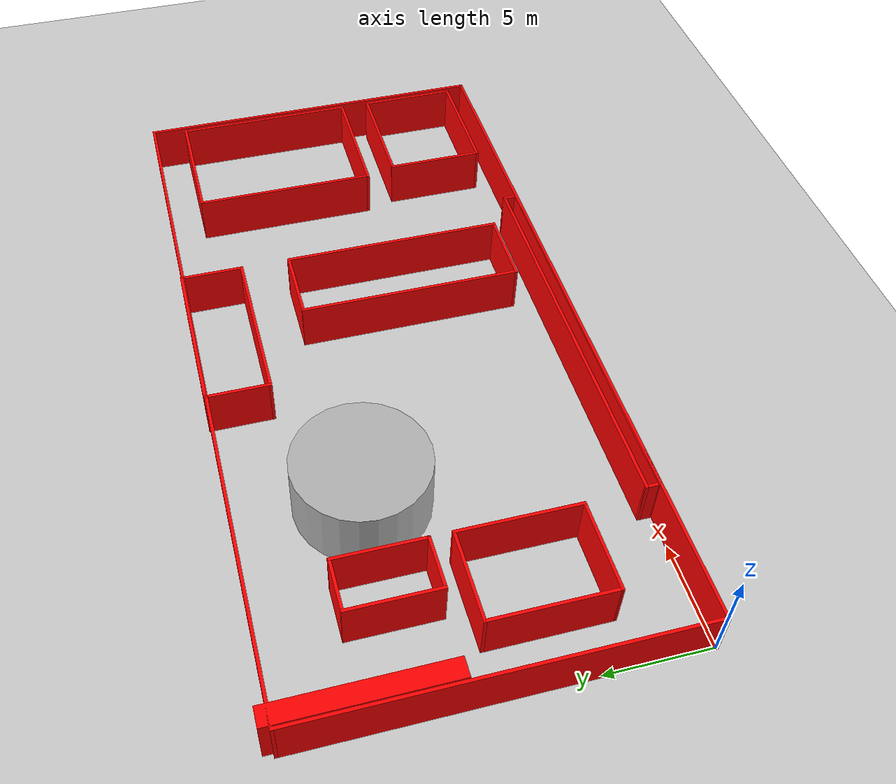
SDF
<sdf version="1.7">
 <world name="default">
  <light name="sun" type="directional">
   <pose>0 0 10 0 -0 0</pose>
   <diffuse>0.8 0.8 0.8 1</diffuse>
   <specular>0.2 0.2 0.2 1</specular>
   <attenuation>
    <range>1000</range>
    <constant>0.9</constant>
    <linear>0.01</linear>
    <quadratic>0.001</quadratic>
   </attenuation>
   <direction>-0.5 0.1 -0.9</direction>
   <spot><inner_angle>0</inner_angle><outer_angle>0</outer_angle><falloff>0</falloff></spot>
  </light>
  <model name="ground_plane">
   <static>1</static>
   <link name="link">
    <collision name="collision">
     <geometry><plane><normal>0 0 1</normal><size>100 100</size></plane></geometry>
     <surface><friction><ode><mu>1.0</mu><mu2>1.0</mu2></ode></friction></surface>
    </collision>
    <visual name="visual">
     <cast_shadows>0</cast_shadows>
     <geometry><plane><normal>0 0 1</normal><size>100 100</size></plane></geometry>
     <material>
      <script><uri>file://media/materials/scripts/gazebo.material</uri><name>Gazebo/Grey</name></script>
     </material>
    </visual>
   </link>
  </model>
  <gravity>0 0 -9.8</gravity>
  <magnetic_field>6e-06 2.3e-05 -4.2e-05</magnetic_field>
  <atmosphere type="adiabatic"/>
  <physics type="ode">
   <max_step_size>0.001</max_step_size>
   <real_time_factor>1</real_time_factor>
   <real_time_update_rate>1000</real_time_update_rate>
  </physics>
  <scene><ambient>0.4 0.4 0.4 1</ambient><background>0.7 0.7 0.7 1</background><shadows>1</shadows></scene>
  <audio><device>default</device></audio>
  <spherical_coordinates>
   <surface_model>EARTH_WGS84</surface_model>
   <latitude_deg>0</latitude_deg>
   <longitude_deg>0</longitude_deg>
   <elevation>0</elevation>
   <heading_deg>0</heading_deg>
  </spherical_coordinates>
  <model name="Untitled">
   <pose>18.29 9.145 0 0 -0 0</pose>
   <link name="Wall_0">
    <collision name="Wall_0_Collision">
     <geometry><box><size>36.73 0.15 2.5</size></box></geometry>
     <pose>0 0 1.25 0 -0 0</pose>
    </collision>
    <visual name="Wall_0_Visual">
     <pose>0 0 1.25 0 -0 0</pose>
     <geometry><box><size>36.73 0.15 2.5</size></box></geometry>
     <material>
      <script><uri>file://media/materials/scripts/gazebo.material</uri><name>Gazebo/Grey</name></script>
      <ambient>1 0 0 0</ambient>
     </material>
     <meta><layer>0</layer></meta>
    </visual>
    <pose>0 -9.145 0 0 -0 0</pose>
   </link>
   <link name="Wall_1">
    <collision name="Wall_1_Collision">
     <geometry><box><size>18.44 0.15 2.5</size></box></geometry>
     <pose>0 0 1.25 0 -0 0</pose>
    </collision>
    <visual name="Wall_1_Visual">
     <pose>0 0 1.25 0 -0 0</pose>
     <geometry><box><size>18.44 0.15 2.5</size></box></geometry>
     <material>
      <script><uri>file://media/materials/scripts/gazebo.material</uri><name>Gazebo/Grey</name></script>
      <ambient>1 0 0 0</ambient>
     </material>
     <meta><layer>0</layer></meta>
    </visual>
    <pose>18.29 0 0 0 -0 1.5708</pose>
   </link>
   <link name="Wall_2">
    <collision name="Wall_2_Collision">
     <geometry><box><size>36.73 0.15 2.5</size></box></geometry>
     <pose>0 0 1.25 0 -0 0</pose>
    </collision>
    <visual name="Wall_2_Visual">
     <pose>0 0 1.25 0 -0 0</pose>
     <geometry><box><size>36.73 0.15 2.5</size></box></geometry>
     <material>
      <script><uri>file://media/materials/scripts/gazebo.material</uri><name>Gazebo/Grey</name></script>
      <ambient>1 0 0 0</ambient>
     </material>
     <meta><layer>0</layer></meta>
    </visual>
    <pose>0 9.145 0 0 -0 3.14159</pose>
   </link>
   <link name="Wall_3">
    <collision name="Wall_3_Collision">
     <geometry><box><size>18.44 0.15 2.5</size></box></geometry>
     <pose>0 0 1.25 0 -0 0</pose>
    </collision>
    <visual name="Wall_3_Visual">
     <pose>0 0 1.25 0 -0 0</pose>
     <geometry><box><size>18.44 0.15 2.5</size></box></geometry>
     <material>
      <script><uri>file://media/materials/scripts/gazebo.material</uri><name>Gazebo/Grey</name></script>
      <ambient>1 0 0 0</ambient>
     </material>
     <meta><layer>0</layer></meta>
    </visual>
    <pose>-18.29 0 0 0 -0 -1.5708</pose>
   </link>
   <static>1</static>
  </model>
  <model name="usda_build_full">
   <link name="Wall_12">
    <pose>-11.6905 -2.945 0 0 -0 1.5708</pose>
    <visual name="Wall_12_Visual">
     <pose>0 0 1.25 0 -0 0</pose>
     <geometry><box><size>5.945 0.15 2.5</size></box></geometry>
     <material>
      <script><uri>file://media/materials/scripts/gazebo.material</uri><name>Gazebo/Grey</name></script>
      <ambient>1 0 0 0</ambient>
      <shader type="pixel"/>
     </material>
     <meta><layer>0</layer></meta>
    </visual>
    <collision name="Wall_12_Collision">
     <pose>0 0 1.25 0 -0 0</pose>
     <geometry><box><size>5.945 0.15 2.5</size></box></geometry>
     <surface>
      <friction>
       <ode><mu>1</mu><mu2>1</mu2><fdir1>0 0 0</fdir1><slip1>0</slip1><slip2>0</slip2></ode>
       <torsional>
        <coefficient>1</coefficient>
        <patch_radius>0</patch_radius>
        <surface_radius>0</surface_radius>
        <use_patch_radius>1</use_patch_radius>
        <ode><slip>0</slip></ode>
       </torsional>
      </friction>
      <bounce><restitution_coefficient>0</restitution_coefficient><threshold>1e+06</threshold></bounce>
      <contact>
       <collide_without_contact>0</collide_without_contact>
       <collide_without_contact_bitmask>1</collide_without_contact_bitmask>
       <collide_bitmask>1</collide_bitmask>
       <ode>
        <soft_cfm>0</soft_cfm>
        <soft_erp>0.2</soft_erp>
        <kp>1e+13</kp>
        <kd>1</kd>
        <max_vel>0.01</max_vel>
        <min_depth>0</min_depth>
       </ode>
       <bullet>
        <split_impulse>1</split_impulse>
        <split_impulse_penetration_threshold>-0.01</split_impulse_penetration_threshold>
        <soft_cfm>0</soft_cfm>
        <soft_erp>0.2</soft_erp>
        <kp>1e+13</kp>
        <kd>1</kd>
       </bullet>
      </contact>
     </surface>
    </collision>
   </link>
   <link name="Wall_13">
    <pose>-13.8255 -0.0475 0 0 -0 3.14159</pose>
    <visual name="Wall_13_Visual">
     <pose>0 0 1.25 0 -0 0</pose>
     <geometry><box><size>4.42 0.15 2.5</size></box></geometry>
     <material>
      <script><uri>file://media/materials/scripts/gazebo.material</uri><name>Gazebo/Grey</name></script>
      <ambient>1 0 0 0</ambient>
      <shader type="pixel"/>
     </material>
     <meta><layer>0</layer></meta>
    </visual>
    <collision name="Wall_13_Collision">
     <pose>0 0 1.25 0 -0 0</pose>
     <geometry><box><size>4.42 0.15 2.5</size></box></geometry>
     <surface>
      <friction>
       <ode><mu>1</mu><mu2>1</mu2><fdir1>0 0 0</fdir1><slip1>0</slip1><slip2>0</slip2></ode>
       <torsional>
        <coefficient>1</coefficient>
        <patch_radius>0</patch_radius>
        <surface_radius>0</surface_radius>
        <use_patch_radius>1</use_patch_radius>
        <ode><slip>0</slip></ode>
       </torsional>
      </friction>
      <bounce><restitution_coefficient>0</restitution_coefficient><threshold>1e+06</threshold></bounce>
      <contact>
       <collide_without_contact>0</collide_without_contact>
       <collide_without_contact_bitmask>1</collide_without_contact_bitmask>
       <collide_bitmask>1</collide_bitmask>
       <ode>
        <soft_cfm>0</soft_cfm>
        <soft_erp>0.2</soft_erp>
        <kp>1e+13</kp>
        <kd>1</kd>
        <max_vel>0.01</max_vel>
        <min_depth>0</min_depth>
       </ode>
       <bullet>
        <split_impulse>1</split_impulse>
        <split_impulse_penetration_threshold>-0.01</split_impulse_penetration_threshold>
        <soft_cfm>0</soft_cfm>
        <soft_erp>0.2</soft_erp>
        <kp>1e+13</kp>
        <kd>1</kd>
       </bullet>
      </contact>
     </surface>
    </collision>
   </link>
   <link name="Wall_14">
    <pose>-15.9605 -2.9475 0 0 0 -1.5708</pose>
    <visual name="Wall_14_Visual">
     <pose>0 0 1.25 0 -0 0</pose>
     <geometry><box><size>5.95 0.15 2.5</size></box></geometry>
     <material>
      <script><uri>file://media/materials/scripts/gazebo.material</uri><name>Gazebo/Grey</name></script>
      <ambient>1 0 0 0</ambient>
      <shader type="pixel"/>
     </material>
     <meta><layer>0</layer></meta>
    </visual>
    <collision name="Wall_14_Collision">
     <pose>0 0 1.25 0 -0 0</pose>
     <geometry><box><size>5.95 0.15 2.5</size></box></geometry>
     <surface>
      <friction>
       <ode><mu>1</mu><mu2>1</mu2><fdir1>0 0 0</fdir1><slip1>0</slip1><slip2>0</slip2></ode>
       <torsional>
        <coefficient>1</coefficient>
        <patch_radius>0</patch_radius>
        <surface_radius>0</surface_radius>
        <use_patch_radius>1</use_patch_radius>
        <ode><slip>0</slip></ode>
       </torsional>
      </friction>
      <bounce><restitution_coefficient>0</restitution_coefficient><threshold>1e+06</threshold></bounce>
      <contact>
       <collide_without_contact>0</collide_without_contact>
       <collide_without_contact_bitmask>1</collide_without_contact_bitmask>
       <collide_bitmask>1</collide_bitmask>
       <ode>
        <soft_cfm>0</soft_cfm>
        <soft_erp>0.2</soft_erp>
        <kp>1e+13</kp>
        <kd>1</kd>
        <max_vel>0.01</max_vel>
        <min_depth>0</min_depth>
       </ode>
       <bullet>
        <split_impulse>1</split_impulse>
        <split_impulse_penetration_threshold>-0.01</split_impulse_penetration_threshold>
        <soft_cfm>0</soft_cfm>
        <soft_erp>0.2</soft_erp>
        <kp>1e+13</kp>
        <kd>1</kd>
       </bullet>
      </contact>
     </surface>
    </collision>
   </link>
   <link name="Wall_15">
    <pose>-13.8255 -5.845 0 0 -0 0.001171</pose>
    <visual name="Wall_15_Visual">
     <pose>0 0 1.25 0 -0 0</pose>
     <geometry><box><size>4.42 0.15 2.5</size></box></geometry>
     <material>
      <script><uri>file://media/materials/scripts/gazebo.material</uri><name>Gazebo/Grey</name></script>
      <ambient>1 0 0 0</ambient>
      <shader type="pixel"/>
     </material>
     <meta><layer>0</layer></meta>
    </visual>
    <collision name="Wall_15_Collision">
     <pose>0 0 1.25 0 -0 0</pose>
     <geometry><box><size>4.42 0.15 2.5</size></box></geometry>
     <surface>
      <friction>
       <ode><mu>1</mu><mu2>1</mu2><fdir1>0 0 0</fdir1><slip1>0</slip1><slip2>0</slip2></ode>
       <torsional>
        <coefficient>1</coefficient>
        <patch_radius>0</patch_radius>
        <surface_radius>0</surface_radius>
        <use_patch_radius>1</use_patch_radius>
        <ode><slip>0</slip></ode>
       </torsional>
      </friction>
      <bounce><restitution_coefficient>0</restitution_coefficient><threshold>1e+06</threshold></bounce>
      <contact>
       <collide_without_contact>0</collide_without_contact>
       <collide_without_contact_bitmask>1</collide_without_contact_bitmask>
       <collide_bitmask>1</collide_bitmask>
       <ode>
        <soft_cfm>0</soft_cfm>
        <soft_erp>0.2</soft_erp>
        <kp>1e+13</kp>
        <kd>1</kd>
        <max_vel>0.01</max_vel>
        <min_depth>0</min_depth>
       </ode>
       <bullet>
        <split_impulse>1</split_impulse>
        <split_impulse_penetration_threshold>-0.01</split_impulse_penetration_threshold>
        <soft_cfm>0</soft_cfm>
        <soft_erp>0.2</soft_erp>
        <kp>1e+13</kp>
        <kd>1</kd>
       </bullet>
      </contact>
     </surface>
    </collision>
   </link>
   <link name="Wall_19">
    <pose>-14.1305 3.1595 0 0 0 -1.5708</pose>
    <visual name="Wall_19_Visual">
     <pose>0 0 1.25 0 -0 0</pose>
     <geometry><box><size>4.42 0.15 2.5</size></box></geometry>
     <material>
      <script><uri>file://media/materials/scripts/gazebo.material</uri><name>Gazebo/Grey</name></script>
      <ambient>1 0 0 0</ambient>
      <shader type="pixel"/>
     </material>
     <meta><layer>0</layer></meta>
    </visual>
    <collision name="Wall_19_Collision">
     <pose>0 0 1.25 0 -0 0</pose>
     <geometry><box><size>4.42 0.15 2.5</size></box></geometry>
     <surface>
      <friction>
       <ode><mu>1</mu><mu2>1</mu2><fdir1>0 0 0</fdir1><slip1>0</slip1><slip2>0</slip2></ode>
       <torsional>
        <coefficient>1</coefficient>
        <patch_radius>0</patch_radius>
        <surface_radius>0</surface_radius>
        <use_patch_radius>1</use_patch_radius>
        <ode><slip>0</slip></ode>
       </torsional>
      </friction>
      <bounce><restitution_coefficient>0</restitution_coefficient><threshold>1e+06</threshold></bounce>
      <contact>
       <collide_without_contact>0</collide_without_contact>
       <collide_without_contact_bitmask>1</collide_without_contact_bitmask>
       <collide_bitmask>1</collide_bitmask>
       <ode>
        <soft_cfm>0</soft_cfm>
        <soft_erp>0.2</soft_erp>
        <kp>1e+13</kp>
        <kd>1</kd>
        <max_vel>0.01</max_vel>
        <min_depth>0</min_depth>
       </ode>
       <bullet>
        <split_impulse>1</split_impulse>
        <split_impulse_penetration_threshold>-0.01</split_impulse_penetration_threshold>
        <soft_cfm>0</soft_cfm>
        <soft_erp>0.2</soft_erp>
        <kp>1e+13</kp>
        <kd>1</kd>
       </bullet>
      </contact>
     </surface>
    </collision>
   </link>
   <link name="Wall_22">
    <pose>-12.9105 1.0245 0 0 -0 3.14159</pose>
    <visual name="Wall_22_Visual">
     <pose>0 0 1.25 0 -0 0</pose>
     <geometry><box><size>2.59 0.15 2.5</size></box></geometry>
     <material>
      <script><uri>file://media/materials/scripts/gazebo.material</uri><name>Gazebo/Grey</name></script>
      <ambient>1 0 0 0</ambient>
      <shader type="pixel"/>
     </material>
     <meta><layer>0</layer></meta>
    </visual>
    <collision name="Wall_22_Collision">
     <pose>0 0 1.25 0 -0 0</pose>
     <geometry><box><size>2.59 0.15 2.5</size></box></geometry>
     <surface>
      <friction>
       <ode><mu>1</mu><mu2>1</mu2><fdir1>0 0 0</fdir1><slip1>0</slip1><slip2>0</slip2></ode>
       <torsional>
        <coefficient>1</coefficient>
        <patch_radius>0</patch_radius>
        <surface_radius>0</surface_radius>
        <use_patch_radius>1</use_patch_radius>
        <ode><slip>0</slip></ode>
       </torsional>
      </friction>
      <bounce><restitution_coefficient>0</restitution_coefficient><threshold>1e+06</threshold></bounce>
      <contact>
       <collide_without_contact>0</collide_without_contact>
       <collide_without_contact_bitmask>1</collide_without_contact_bitmask>
       <collide_bitmask>1</collide_bitmask>
       <ode>
        <soft_cfm>0</soft_cfm>
        <soft_erp>0.2</soft_erp>
        <kp>1e+13</kp>
        <kd>1</kd>
        <max_vel>0.01</max_vel>
        <min_depth>0</min_depth>
       </ode>
       <bullet>
        <split_impulse>1</split_impulse>
        <split_impulse_penetration_threshold>-0.01</split_impulse_penetration_threshold>
        <soft_cfm>0</soft_cfm>
        <soft_erp>0.2</soft_erp>
        <kp>1e+13</kp>
        <kd>1</kd>
       </bullet>
      </contact>
     </surface>
    </collision>
   </link>
   <link name="Wall_24">
    <pose>-11.6905 3.1595 0 0 -0 1.5708</pose>
    <visual name="Wall_24_Visual">
     <pose>0 0 1.25 0 -0 0</pose>
     <geometry><box><size>4.42 0.15 2.5</size></box></geometry>
     <material>
      <script><uri>file://media/materials/scripts/gazebo.material</uri><name>Gazebo/Grey</name></script>
      <ambient>1 0 0 0</ambient>
      <shader type="pixel"/>
     </material>
     <meta><layer>0</layer></meta>
    </visual>
    <collision name="Wall_24_Collision">
     <pose>0 0 1.25 0 -0 0</pose>
     <geometry><box><size>4.42 0.15 2.5</size></box></geometry>
     <surface>
      <friction>
       <ode><mu>1</mu><mu2>1</mu2><fdir1>0 0 0</fdir1><slip1>0</slip1><slip2>0</slip2></ode>
       <torsional>
        <coefficient>1</coefficient>
        <patch_radius>0</patch_radius>
        <surface_radius>0</surface_radius>
        <use_patch_radius>1</use_patch_radius>
        <ode><slip>0</slip></ode>
       </torsional>
      </friction>
      <bounce><restitution_coefficient>0</restitution_coefficient><threshold>1e+06</threshold></bounce>
      <contact>
       <collide_without_contact>0</collide_without_contact>
       <collide_without_contact_bitmask>1</collide_without_contact_bitmask>
       <collide_bitmask>1</collide_bitmask>
       <ode>
        <soft_cfm>0</soft_cfm>
        <soft_erp>0.2</soft_erp>
        <kp>1e+13</kp>
        <kd>1</kd>
        <max_vel>0.01</max_vel>
        <min_depth>0</min_depth>
       </ode>
       <bullet>
        <split_impulse>1</split_impulse>
        <split_impulse_penetration_threshold>-0.01</split_impulse_penetration_threshold>
        <soft_cfm>0</soft_cfm>
        <soft_erp>0.2</soft_erp>
        <kp>1e+13</kp>
        <kd>1</kd>
       </bullet>
      </contact>
     </surface>
    </collision>
   </link>
   <link name="Wall_25">
    <pose>-12.8655 5.2945 0 0 -0 3.14159</pose>
    <visual name="Wall_25_Visual">
     <pose>0 0 1.25 0 -0 0</pose>
     <geometry><box><size>2.5 0.15 2.5</size></box></geometry>
     <material>
      <script><uri>file://media/materials/scripts/gazebo.material</uri><name>Gazebo/Grey</name></script>
      <ambient>1 0 0 0</ambient>
      <shader type="pixel"/>
     </material>
     <meta><layer>0</layer></meta>
    </visual>
    <collision name="Wall_25_Collision">
     <pose>0 0 1.25 0 -0 0</pose>
     <geometry><box><size>2.5 0.15 2.5</size></box></geometry>
     <surface>
      <friction>
       <ode><mu>1</mu><mu2>1</mu2><fdir1>0 0 0</fdir1><slip1>0</slip1><slip2>0</slip2></ode>
       <torsional>
        <coefficient>1</coefficient>
        <patch_radius>0</patch_radius>
        <surface_radius>0</surface_radius>
        <use_patch_radius>1</use_patch_radius>
        <ode><slip>0</slip></ode>
       </torsional>
      </friction>
      <bounce><restitution_coefficient>0</restitution_coefficient><threshold>1e+06</threshold></bounce>
      <contact>
       <collide_without_contact>0</collide_without_contact>
       <collide_without_contact_bitmask>1</collide_without_contact_bitmask>
       <collide_bitmask>1</collide_bitmask>
       <ode>
        <soft_cfm>0</soft_cfm>
        <soft_erp>0.2</soft_erp>
        <kp>1e+13</kp>
        <kd>1</kd>
        <max_vel>0.01</max_vel>
        <min_depth>0</min_depth>
       </ode>
       <bullet>
        <split_impulse>1</split_impulse>
        <split_impulse_penetration_threshold>-0.01</split_impulse_penetration_threshold>
        <soft_cfm>0</soft_cfm>
        <soft_erp>0.2</soft_erp>
        <kp>1e+13</kp>
        <kd>1</kd>
       </bullet>
      </contact>
     </surface>
    </collision>
   </link>
   <link name="Wall_27">
    <pose>-1.86052 7.4275 0 0 -0 1.5708</pose>
    <visual name="Wall_27_Visual">
     <pose>0 0 1.25 0 -0 0</pose>
     <geometry><box><size>3.2 0.15 2.5</size></box></geometry>
     <material>
      <script><uri>file://media/materials/scripts/gazebo.material</uri><name>Gazebo/Grey</name></script>
      <ambient>1 0 0 0</ambient>
      <shader type="pixel"/>
     </material>
     <meta><layer>0</layer></meta>
    </visual>
    <collision name="Wall_27_Collision">
     <pose>0 0 1.25 0 -0 0</pose>
     <geometry><box><size>3.2 0.15 2.5</size></box></geometry>
     <surface>
      <friction>
       <ode><mu>1</mu><mu2>1</mu2><fdir1>0 0 0</fdir1><slip1>0</slip1><slip2>0</slip2></ode>
       <torsional>
        <coefficient>1</coefficient>
        <patch_radius>0</patch_radius>
        <surface_radius>0</surface_radius>
        <use_patch_radius>1</use_patch_radius>
        <ode><slip>0</slip></ode>
       </torsional>
      </friction>
      <bounce><restitution_coefficient>0</restitution_coefficient><threshold>1e+06</threshold></bounce>
      <contact>
       <collide_without_contact>0</collide_without_contact>
       <collide_without_contact_bitmask>1</collide_without_contact_bitmask>
       <collide_bitmask>1</collide_bitmask>
       <ode>
        <soft_cfm>0</soft_cfm>
        <soft_erp>0.2</soft_erp>
        <kp>1e+13</kp>
        <kd>1</kd>
        <max_vel>0.01</max_vel>
        <min_depth>0</min_depth>
       </ode>
       <bullet>
        <split_impulse>1</split_impulse>
        <split_impulse_penetration_threshold>-0.01</split_impulse_penetration_threshold>
        <soft_cfm>0</soft_cfm>
        <soft_erp>0.2</soft_erp>
        <kp>1e+13</kp>
        <kd>1</kd>
       </bullet>
      </contact>
     </surface>
    </collision>
   </link>
   <link name="Wall_29">
    <pose>2.13948 5.9025 0 0 -0 0</pose>
    <visual name="Wall_29_Visual">
     <pose>0 0 1.25 0 -0 0</pose>
     <geometry><box><size>8.15 0.15 2.5</size></box></geometry>
     <material>
      <script><uri>file://media/materials/scripts/gazebo.material</uri><name>Gazebo/Grey</name></script>
      <ambient>1 0 0 0</ambient>
      <shader type="pixel"/>
     </material>
     <meta><layer>0</layer></meta>
    </visual>
    <collision name="Wall_29_Collision">
     <pose>0 0 1.25 0 -0 0</pose>
     <geometry><box><size>8.15 0.15 2.5</size></box></geometry>
     <surface>
      <friction>
       <ode><mu>1</mu><mu2>1</mu2><fdir1>0 0 0</fdir1><slip1>0</slip1><slip2>0</slip2></ode>
       <torsional>
        <coefficient>1</coefficient>
        <patch_radius>0</patch_radius>
        <surface_radius>0</surface_radius>
        <use_patch_radius>1</use_patch_radius>
        <ode><slip>0</slip></ode>
       </torsional>
      </friction>
      <bounce><restitution_coefficient>0</restitution_coefficient><threshold>1e+06</threshold></bounce>
      <contact>
       <collide_without_contact>0</collide_without_contact>
       <collide_without_contact_bitmask>1</collide_without_contact_bitmask>
       <collide_bitmask>1</collide_bitmask>
       <ode>
        <soft_cfm>0</soft_cfm>
        <soft_erp>0.2</soft_erp>
        <kp>1e+13</kp>
        <kd>1</kd>
        <max_vel>0.01</max_vel>
        <min_depth>0</min_depth>
       </ode>
       <bullet>
        <split_impulse>1</split_impulse>
        <split_impulse_penetration_threshold>-0.01</split_impulse_penetration_threshold>
        <soft_cfm>0</soft_cfm>
        <soft_erp>0.2</soft_erp>
        <kp>1e+13</kp>
        <kd>1</kd>
       </bullet>
      </contact>
     </surface>
    </collision>
   </link>
   <link name="Wall_30">
    <pose>6.13948 7.4275 0 0 -0 1.5708</pose>
    <visual name="Wall_30_Visual">
     <pose>0 0 1.25 0 -0 0</pose>
     <geometry><box><size>3.2 0.15 2.5</size></box></geometry>
     <material>
      <script><uri>file://media/materials/scripts/gazebo.material</uri><name>Gazebo/Grey</name></script>
      <ambient>1 0 0 0</ambient>
      <shader type="pixel"/>
     </material>
     <meta><layer>0</layer></meta>
    </visual>
    <collision name="Wall_30_Collision">
     <pose>0 0 1.25 0 -0 0</pose>
     <geometry><box><size>3.2 0.15 2.5</size></box></geometry>
     <surface>
      <friction>
       <ode><mu>1</mu><mu2>1</mu2><fdir1>0 0 0</fdir1><slip1>0</slip1><slip2>0</slip2></ode>
       <torsional>
        <coefficient>1</coefficient>
        <patch_radius>0</patch_radius>
        <surface_radius>0</surface_radius>
        <use_patch_radius>1</use_patch_radius>
        <ode><slip>0</slip></ode>
       </torsional>
      </friction>
      <bounce><restitution_coefficient>0</restitution_coefficient><threshold>1e+06</threshold></bounce>
      <contact>
       <collide_without_contact>0</collide_without_contact>
       <collide_without_contact_bitmask>1</collide_without_contact_bitmask>
       <collide_bitmask>1</collide_bitmask>
       <ode>
        <soft_cfm>0</soft_cfm>
        <soft_erp>0.2</soft_erp>
        <kp>1e+13</kp>
        <kd>1</kd>
        <max_vel>0.01</max_vel>
        <min_depth>0</min_depth>
       </ode>
       <bullet>
        <split_impulse>1</split_impulse>
        <split_impulse_penetration_threshold>-0.01</split_impulse_penetration_threshold>
        <soft_cfm>0</soft_cfm>
        <soft_erp>0.2</soft_erp>
        <kp>1e+13</kp>
        <kd>1</kd>
       </bullet>
      </contact>
     </surface>
    </collision>
   </link>
   <link name="Wall_31">
    <pose>2.13948 8.9525 0 0 -0 3.14159</pose>
    <visual name="Wall_31_Visual">
     <pose>0 0 1.25 0 -0 0</pose>
     <geometry><box><size>8.15 0.15 2.5</size></box></geometry>
     <material>
      <script><uri>file://media/materials/scripts/gazebo.material</uri><name>Gazebo/Grey</name></script>
      <ambient>1 0 0 0</ambient>
      <shader type="pixel"/>
     </material>
     <meta><layer>0</layer></meta>
    </visual>
    <collision name="Wall_31_Collision">
     <pose>0 0 1.25 0 -0 0</pose>
     <geometry><box><size>8.15 0.15 2.5</size></box></geometry>
     <surface>
      <friction>
       <ode><mu>1</mu><mu2>1</mu2><fdir1>0 0 0</fdir1><slip1>0</slip1><slip2>0</slip2></ode>
       <torsional>
        <coefficient>1</coefficient>
        <patch_radius>0</patch_radius>
        <surface_radius>0</surface_radius>
        <use_patch_radius>1</use_patch_radius>
        <ode><slip>0</slip></ode>
       </torsional>
      </friction>
      <bounce><restitution_coefficient>0</restitution_coefficient><threshold>1e+06</threshold></bounce>
      <contact>
       <collide_without_contact>0</collide_without_contact>
       <collide_without_contact_bitmask>1</collide_without_contact_bitmask>
       <collide_bitmask>1</collide_bitmask>
       <ode>
        <soft_cfm>0</soft_cfm>
        <soft_erp>0.2</soft_erp>
        <kp>1e+13</kp>
        <kd>1</kd>
        <max_vel>0.01</max_vel>
        <min_depth>0</min_depth>
       </ode>
       <bullet>
        <split_impulse>1</split_impulse>
        <split_impulse_penetration_threshold>-0.01</split_impulse_penetration_threshold>
        <soft_cfm>0</soft_cfm>
        <soft_erp>0.2</soft_erp>
        <kp>1e+13</kp>
        <kd>1</kd>
       </bullet>
      </contact>
     </surface>
    </collision>
   </link>
   <link name="Wall_33">
    <pose>6.13948 -2.0235 0 0 0 -1.5708</pose>
    <visual name="Wall_33_Visual">
     <pose>0 0 1.25 0 -0 0</pose>
     <geometry><box><size>11.13 0.15 2.5</size></box></geometry>
     <material>
      <script><uri>file://media/materials/scripts/gazebo.material</uri><name>Gazebo/Grey</name></script>
      <ambient>1 0 0 0</ambient>
      <shader type="pixel"/>
     </material>
     <meta><layer>0</layer></meta>
    </visual>
    <collision name="Wall_33_Collision">
     <pose>0 0 1.25 0 -0 0</pose>
     <geometry><box><size>11.13 0.15 2.5</size></box></geometry>
     <surface>
      <friction>
       <ode><mu>1</mu><mu2>1</mu2><fdir1>0 0 0</fdir1><slip1>0</slip1><slip2>0</slip2></ode>
       <torsional>
        <coefficient>1</coefficient>
        <patch_radius>0</patch_radius>
        <surface_radius>0</surface_radius>
        <use_patch_radius>1</use_patch_radius>
        <ode><slip>0</slip></ode>
       </torsional>
      </friction>
      <bounce><restitution_coefficient>0</restitution_coefficient><threshold>1e+06</threshold></bounce>
      <contact>
       <collide_without_contact>0</collide_without_contact>
       <collide_without_contact_bitmask>1</collide_without_contact_bitmask>
       <collide_bitmask>1</collide_bitmask>
       <ode>
        <soft_cfm>0</soft_cfm>
        <soft_erp>0.2</soft_erp>
        <kp>1e+13</kp>
        <kd>1</kd>
        <max_vel>0.01</max_vel>
        <min_depth>0</min_depth>
       </ode>
       <bullet>
        <split_impulse>1</split_impulse>
        <split_impulse_penetration_threshold>-0.01</split_impulse_penetration_threshold>
        <soft_cfm>0</soft_cfm>
        <soft_erp>0.2</soft_erp>
        <kp>1e+13</kp>
        <kd>1</kd>
       </bullet>
      </contact>
     </surface>
    </collision>
   </link>
   <link name="Wall_34">
    <pose>4.29698 -7.5135 0 0 -0 3.14159</pose>
    <visual name="Wall_34_Visual">
     <pose>0 0 1.25 0 -0 0</pose>
     <geometry><box><size>3.835 0.15 2.5</size></box></geometry>
     <material>
      <script><uri>file://media/materials/scripts/gazebo.material</uri><name>Gazebo/Grey</name></script>
      <ambient>1 0 0 0</ambient>
      <shader type="pixel"/>
     </material>
     <meta><layer>0</layer></meta>
    </visual>
    <collision name="Wall_34_Collision">
     <pose>0 0 1.25 0 -0 0</pose>
     <geometry><box><size>3.835 0.15 2.5</size></box></geometry>
     <surface>
      <friction>
       <ode><mu>1</mu><mu2>1</mu2><fdir1>0 0 0</fdir1><slip1>0</slip1><slip2>0</slip2></ode>
       <torsional>
        <coefficient>1</coefficient>
        <patch_radius>0</patch_radius>
        <surface_radius>0</surface_radius>
        <use_patch_radius>1</use_patch_radius>
        <ode><slip>0</slip></ode>
       </torsional>
      </friction>
      <bounce><restitution_coefficient>0</restitution_coefficient><threshold>1e+06</threshold></bounce>
      <contact>
       <collide_without_contact>0</collide_without_contact>
       <collide_without_contact_bitmask>1</collide_without_contact_bitmask>
       <collide_bitmask>1</collide_bitmask>
       <ode>
        <soft_cfm>0</soft_cfm>
        <soft_erp>0.2</soft_erp>
        <kp>1e+13</kp>
        <kd>1</kd>
        <max_vel>0.01</max_vel>
        <min_depth>0</min_depth>
       </ode>
       <bullet>
        <split_impulse>1</split_impulse>
        <split_impulse_penetration_threshold>-0.01</split_impulse_penetration_threshold>
        <soft_cfm>0</soft_cfm>
        <soft_erp>0.2</soft_erp>
        <kp>1e+13</kp>
        <kd>1</kd>
       </bullet>
      </contact>
     </surface>
    </collision>
   </link>
   <link name="Wall_35">
    <pose>2.45448 -2.0235 0 0 -0 1.5708</pose>
    <visual name="Wall_35_Visual">
     <pose>0 0 1.25 0 -0 0</pose>
     <geometry><box><size>11.13 0.15 2.5</size></box></geometry>
     <material>
      <script><uri>file://media/materials/scripts/gazebo.material</uri><name>Gazebo/Grey</name></script>
      <ambient>1 0 0 0</ambient>
      <shader type="pixel"/>
     </material>
     <meta><layer>0</layer></meta>
    </visual>
    <collision name="Wall_35_Collision">
     <pose>0 0 1.25 0 -0 0</pose>
     <geometry><box><size>11.13 0.15 2.5</size></box></geometry>
     <surface>
      <friction>
       <ode><mu>1</mu><mu2>1</mu2><fdir1>0 0 0</fdir1><slip1>0</slip1><slip2>0</slip2></ode>
       <torsional>
        <coefficient>1</coefficient>
        <patch_radius>0</patch_radius>
        <surface_radius>0</surface_radius>
        <use_patch_radius>1</use_patch_radius>
        <ode><slip>0</slip></ode>
       </torsional>
      </friction>
      <bounce><restitution_coefficient>0</restitution_coefficient><threshold>1e+06</threshold></bounce>
      <contact>
       <collide_without_contact>0</collide_without_contact>
       <collide_without_contact_bitmask>1</collide_without_contact_bitmask>
       <collide_bitmask>1</collide_bitmask>
       <ode>
        <soft_cfm>0</soft_cfm>
        <soft_erp>0.2</soft_erp>
        <kp>1e+13</kp>
        <kd>1</kd>
        <max_vel>0.01</max_vel>
        <min_depth>0</min_depth>
       </ode>
       <bullet>
        <split_impulse>1</split_impulse>
        <split_impulse_penetration_threshold>-0.01</split_impulse_penetration_threshold>
        <soft_cfm>0</soft_cfm>
        <soft_erp>0.2</soft_erp>
        <kp>1e+13</kp>
        <kd>1</kd>
       </bullet>
      </contact>
     </surface>
    </collision>
   </link>
   <link name="Wall_36">
    <pose>4.29698 3.4665 0 0 -0 0</pose>
    <visual name="Wall_36_Visual">
     <pose>0 0 1.25 0 -0 0</pose>
     <geometry><box><size>3.835 0.15 2.5</size></box></geometry>
     <material>
      <script><uri>file://media/materials/scripts/gazebo.material</uri><name>Gazebo/Grey</name></script>
      <ambient>1 0 0 0</ambient>
      <shader type="pixel"/>
     </material>
     <meta><layer>0</layer></meta>
    </visual>
    <collision name="Wall_36_Collision">
     <pose>0 0 1.25 0 -0 0</pose>
     <geometry><box><size>3.835 0.15 2.5</size></box></geometry>
     <surface>
      <friction>
       <ode><mu>1</mu><mu2>1</mu2><fdir1>0 0 0</fdir1><slip1>0</slip1><slip2>0</slip2></ode>
       <torsional>
        <coefficient>1</coefficient>
        <patch_radius>0</patch_radius>
        <surface_radius>0</surface_radius>
        <use_patch_radius>1</use_patch_radius>
        <ode><slip>0</slip></ode>
       </torsional>
      </friction>
      <bounce><restitution_coefficient>0</restitution_coefficient><threshold>1e+06</threshold></bounce>
      <contact>
       <collide_without_contact>0</collide_without_contact>
       <collide_without_contact_bitmask>1</collide_without_contact_bitmask>
       <collide_bitmask>1</collide_bitmask>
       <ode>
        <soft_cfm>0</soft_cfm>
        <soft_erp>0.2</soft_erp>
        <kp>1e+13</kp>
        <kd>1</kd>
        <max_vel>0.01</max_vel>
        <min_depth>0</min_depth>
       </ode>
       <bullet>
        <split_impulse>1</split_impulse>
        <split_impulse_penetration_threshold>-0.01</split_impulse_penetration_threshold>
        <soft_cfm>0</soft_cfm>
        <soft_erp>0.2</soft_erp>
        <kp>1e+13</kp>
        <kd>1</kd>
       </bullet>
      </contact>
     </surface>
    </collision>
   </link>
   <link name="Wall_38">
    <pose>14.82 7.1235 0 0 -0 0</pose>
    <visual name="Wall_38_Visual">
     <pose>0 0 1.25 0 -0 0</pose>
     <geometry><box><size>6.549 0.15 2.5</size></box></geometry>
     <material>
      <script><uri>file://media/materials/scripts/gazebo.material</uri><name>Gazebo/Grey</name></script>
      <ambient>1 0 0 0</ambient>
      <shader type="pixel"/>
     </material>
     <meta><layer>0</layer></meta>
    </visual>
    <collision name="Wall_38_Collision">
     <pose>0 0 1.25 0 -0 0</pose>
     <geometry><box><size>6.549 0.15 2.5</size></box></geometry>
     <surface>
      <friction>
       <ode><mu>1</mu><mu2>1</mu2><fdir1>0 0 0</fdir1><slip1>0</slip1><slip2>0</slip2></ode>
       <torsional>
        <coefficient>1</coefficient>
        <patch_radius>0</patch_radius>
        <surface_radius>0</surface_radius>
        <use_patch_radius>1</use_patch_radius>
        <ode><slip>0</slip></ode>
       </torsional>
      </friction>
      <bounce><restitution_coefficient>0</restitution_coefficient><threshold>1e+06</threshold></bounce>
      <contact>
       <collide_without_contact>0</collide_without_contact>
       <collide_without_contact_bitmask>1</collide_without_contact_bitmask>
       <collide_bitmask>1</collide_bitmask>
       <ode>
        <soft_cfm>0</soft_cfm>
        <soft_erp>0.2</soft_erp>
        <kp>1e+13</kp>
        <kd>1</kd>
        <max_vel>0.01</max_vel>
        <min_depth>0</min_depth>
       </ode>
       <bullet>
        <split_impulse>1</split_impulse>
        <split_impulse_penetration_threshold>-0.01</split_impulse_penetration_threshold>
        <soft_cfm>0</soft_cfm>
        <soft_erp>0.2</soft_erp>
        <kp>1e+13</kp>
        <kd>1</kd>
       </bullet>
      </contact>
     </surface>
    </collision>
   </link>
   <link name="Wall_39">
    <pose>18.0225 2.5485 0 0 0 -1.57014</pose>
    <visual name="Wall_39_Visual">
     <pose>0 0 1.25 0 -0 0</pose>
     <geometry><box><size>9.3 0.15 2.5</size></box></geometry>
     <material>
      <script><uri>file://media/materials/scripts/gazebo.material</uri><name>Gazebo/Grey</name></script>
      <ambient>1 0 0 0</ambient>
      <shader type="pixel"/>
     </material>
     <meta><layer>0</layer></meta>
    </visual>
    <collision name="Wall_39_Collision">
     <pose>0 0 1.25 0 -0 0</pose>
     <geometry><box><size>9.3 0.15 2.5</size></box></geometry>
     <surface>
      <friction>
       <ode><mu>1</mu><mu2>1</mu2><fdir1>0 0 0</fdir1><slip1>0</slip1><slip2>0</slip2></ode>
       <torsional>
        <coefficient>1</coefficient>
        <patch_radius>0</patch_radius>
        <surface_radius>0</surface_radius>
        <use_patch_radius>1</use_patch_radius>
        <ode><slip>0</slip></ode>
       </torsional>
      </friction>
      <bounce><restitution_coefficient>0</restitution_coefficient><threshold>1e+06</threshold></bounce>
      <contact>
       <collide_without_contact>0</collide_without_contact>
       <collide_without_contact_bitmask>1</collide_without_contact_bitmask>
       <collide_bitmask>1</collide_bitmask>
       <ode>
        <soft_cfm>0</soft_cfm>
        <soft_erp>0.2</soft_erp>
        <kp>1e+13</kp>
        <kd>1</kd>
        <max_vel>0.01</max_vel>
        <min_depth>0</min_depth>
       </ode>
       <bullet>
        <split_impulse>1</split_impulse>
        <split_impulse_penetration_threshold>-0.01</split_impulse_penetration_threshold>
        <soft_cfm>0</soft_cfm>
        <soft_erp>0.2</soft_erp>
        <kp>1e+13</kp>
        <kd>1</kd>
       </bullet>
      </contact>
     </surface>
    </collision>
   </link>
   <link name="Wall_40">
    <pose>14.823 -2.0265 0 0 -0 3.14159</pose>
    <visual name="Wall_40_Visual">
     <pose>0 0 1.25 0 -0 0</pose>
     <geometry><box><size>6.555 0.15 2.5</size></box></geometry>
     <material>
      <script><uri>file://media/materials/scripts/gazebo.material</uri><name>Gazebo/Grey</name></script>
      <ambient>1 0 0 0</ambient>
      <shader type="pixel"/>
     </material>
     <meta><layer>0</layer></meta>
    </visual>
    <collision name="Wall_40_Collision">
     <pose>0 0 1.25 0 -0 0</pose>
     <geometry><box><size>6.555 0.15 2.5</size></box></geometry>
     <surface>
      <friction>
       <ode><mu>1</mu><mu2>1</mu2><fdir1>0 0 0</fdir1><slip1>0</slip1><slip2>0</slip2></ode>
       <torsional>
        <coefficient>1</coefficient>
        <patch_radius>0</patch_radius>
        <surface_radius>0</surface_radius>
        <use_patch_radius>1</use_patch_radius>
        <ode><slip>0</slip></ode>
       </torsional>
      </friction>
      <bounce><restitution_coefficient>0</restitution_coefficient><threshold>1e+06</threshold></bounce>
      <contact>
       <collide_without_contact>0</collide_without_contact>
       <collide_without_contact_bitmask>1</collide_without_contact_bitmask>
       <collide_bitmask>1</collide_bitmask>
       <ode>
        <soft_cfm>0</soft_cfm>
        <soft_erp>0.2</soft_erp>
        <kp>1e+13</kp>
        <kd>1</kd>
        <max_vel>0.01</max_vel>
        <min_depth>0</min_depth>
       </ode>
       <bullet>
        <split_impulse>1</split_impulse>
        <split_impulse_penetration_threshold>-0.01</split_impulse_penetration_threshold>
        <soft_cfm>0</soft_cfm>
        <soft_erp>0.2</soft_erp>
        <kp>1e+13</kp>
        <kd>1</kd>
       </bullet>
      </contact>
     </surface>
    </collision>
   </link>
   <link name="Wall_41">
    <pose>11.6205 2.5485 0 0 -0 1.5708</pose>
    <visual name="Wall_41_Visual">
     <pose>0 0 1.25 0 -0 0</pose>
     <geometry><box><size>9.3 0.15 2.5</size></box></geometry>
     <material>
      <script><uri>file://media/materials/scripts/gazebo.material</uri><name>Gazebo/Grey</name></script>
      <ambient>1 0 0 0</ambient>
      <shader type="pixel"/>
     </material>
     <meta><layer>0</layer></meta>
    </visual>
    <collision name="Wall_41_Collision">
     <pose>0 0 1.25 0 -0 0</pose>
     <geometry><box><size>9.3 0.15 2.5</size></box></geometry>
     <surface>
      <friction>
       <ode><mu>1</mu><mu2>1</mu2><fdir1>0 0 0</fdir1><slip1>0</slip1><slip2>0</slip2></ode>
       <torsional>
        <coefficient>1</coefficient>
        <patch_radius>0</patch_radius>
        <surface_radius>0</surface_radius>
        <use_patch_radius>1</use_patch_radius>
        <ode><slip>0</slip></ode>
       </torsional>
      </friction>
      <bounce><restitution_coefficient>0</restitution_coefficient><threshold>1e+06</threshold></bounce>
      <contact>
       <collide_without_contact>0</collide_without_contact>
       <collide_without_contact_bitmask>1</collide_without_contact_bitmask>
       <collide_bitmask>1</collide_bitmask>
       <ode>
        <soft_cfm>0</soft_cfm>
        <soft_erp>0.2</soft_erp>
        <kp>1e+13</kp>
        <kd>1</kd>
        <max_vel>0.01</max_vel>
        <min_depth>0</min_depth>
       </ode>
       <bullet>
        <split_impulse>1</split_impulse>
        <split_impulse_penetration_threshold>-0.01</split_impulse_penetration_threshold>
        <soft_cfm>0</soft_cfm>
        <soft_erp>0.2</soft_erp>
        <kp>1e+13</kp>
        <kd>1</kd>
       </bullet>
      </contact>
     </surface>
    </collision>
   </link>
   <link name="Wall_43">
    <pose>15.0305 -3.5375 0 0 -0 0</pose>
    <visual name="Wall_43_Visual">
     <pose>0 0 1.25 0 -0 0</pose>
     <geometry><box><size>6.14 0.15 2.5</size></box></geometry>
     <material>
      <script><uri>file://media/materials/scripts/gazebo.material</uri><name>Gazebo/Grey</name></script>
      <ambient>1 0 0 0</ambient>
      <shader type="pixel"/>
     </material>
     <meta><layer>0</layer></meta>
    </visual>
    <collision name="Wall_43_Collision">
     <pose>0 0 1.25 0 -0 0</pose>
     <geometry><box><size>6.14 0.15 2.5</size></box></geometry>
     <surface>
      <friction>
       <ode><mu>1</mu><mu2>1</mu2><fdir1>0 0 0</fdir1><slip1>0</slip1><slip2>0</slip2></ode>
       <torsional>
        <coefficient>1</coefficient>
        <patch_radius>0</patch_radius>
        <surface_radius>0</surface_radius>
        <use_patch_radius>1</use_patch_radius>
        <ode><slip>0</slip></ode>
       </torsional>
      </friction>
      <bounce><restitution_coefficient>0</restitution_coefficient><threshold>1e+06</threshold></bounce>
      <contact>
       <collide_without_contact>0</collide_without_contact>
       <collide_without_contact_bitmask>1</collide_without_contact_bitmask>
       <collide_bitmask>1</collide_bitmask>
       <ode>
        <soft_cfm>0</soft_cfm>
        <soft_erp>0.2</soft_erp>
        <kp>1e+13</kp>
        <kd>1</kd>
        <max_vel>0.01</max_vel>
        <min_depth>0</min_depth>
       </ode>
       <bullet>
        <split_impulse>1</split_impulse>
        <split_impulse_penetration_threshold>-0.01</split_impulse_penetration_threshold>
        <soft_cfm>0</soft_cfm>
        <soft_erp>0.2</soft_erp>
        <kp>1e+13</kp>
        <kd>1</kd>
       </bullet>
      </contact>
     </surface>
    </collision>
   </link>
   <link name="Wall_44">
    <pose>18.0255 -5.9775 0 0 0 -1.5708</pose>
    <visual name="Wall_44_Visual">
     <pose>0 0 1.25 0 -0 0</pose>
     <geometry><box><size>5.03 0.15 2.5</size></box></geometry>
     <material>
      <script><uri>file://media/materials/scripts/gazebo.material</uri><name>Gazebo/Grey</name></script>
      <ambient>1 0 0 0</ambient>
      <shader type="pixel"/>
     </material>
     <meta><layer>0</layer></meta>
    </visual>
    <collision name="Wall_44_Collision">
     <pose>0 0 1.25 0 -0 0</pose>
     <geometry><box><size>5.03 0.15 2.5</size></box></geometry>
     <surface>
      <friction>
       <ode><mu>1</mu><mu2>1</mu2><fdir1>0 0 0</fdir1><slip1>0</slip1><slip2>0</slip2></ode>
       <torsional>
        <coefficient>1</coefficient>
        <patch_radius>0</patch_radius>
        <surface_radius>0</surface_radius>
        <use_patch_radius>1</use_patch_radius>
        <ode><slip>0</slip></ode>
       </torsional>
      </friction>
      <bounce><restitution_coefficient>0</restitution_coefficient><threshold>1e+06</threshold></bounce>
      <contact>
       <collide_without_contact>0</collide_without_contact>
       <collide_without_contact_bitmask>1</collide_without_contact_bitmask>
       <collide_bitmask>1</collide_bitmask>
       <ode>
        <soft_cfm>0</soft_cfm>
        <soft_erp>0.2</soft_erp>
        <kp>1e+13</kp>
        <kd>1</kd>
        <max_vel>0.01</max_vel>
        <min_depth>0</min_depth>
       </ode>
       <bullet>
        <split_impulse>1</split_impulse>
        <split_impulse_penetration_threshold>-0.01</split_impulse_penetration_threshold>
        <soft_cfm>0</soft_cfm>
        <soft_erp>0.2</soft_erp>
        <kp>1e+13</kp>
        <kd>1</kd>
       </bullet>
      </contact>
     </surface>
    </collision>
   </link>
   <link name="Wall_45">
    <pose>15.0305 -8.4175 0 0 -0 3.14159</pose>
    <visual name="Wall_45_Visual">
     <pose>0 0 1.25 0 -0 0</pose>
     <geometry><box><size>6.14 0.15 2.5</size></box></geometry>
     <material>
      <script><uri>file://media/materials/scripts/gazebo.material</uri><name>Gazebo/Grey</name></script>
      <ambient>1 0 0 0</ambient>
      <shader type="pixel"/>
     </material>
     <meta><layer>0</layer></meta>
    </visual>
    <collision name="Wall_45_Collision">
     <pose>0 0 1.25 0 -0 0</pose>
     <geometry><box><size>6.14 0.15 2.5</size></box></geometry>
     <surface>
      <friction>
       <ode><mu>1</mu><mu2>1</mu2><fdir1>0 0 0</fdir1><slip1>0</slip1><slip2>0</slip2></ode>
       <torsional>
        <coefficient>1</coefficient>
        <patch_radius>0</patch_radius>
        <surface_radius>0</surface_radius>
        <use_patch_radius>1</use_patch_radius>
        <ode><slip>0</slip></ode>
       </torsional>
      </friction>
      <bounce><restitution_coefficient>0</restitution_coefficient><threshold>1e+06</threshold></bounce>
      <contact>
       <collide_without_contact>0</collide_without_contact>
       <collide_without_contact_bitmask>1</collide_without_contact_bitmask>
       <collide_bitmask>1</collide_bitmask>
       <ode>
        <soft_cfm>0</soft_cfm>
        <soft_erp>0.2</soft_erp>
        <kp>1e+13</kp>
        <kd>1</kd>
        <max_vel>0.01</max_vel>
        <min_depth>0</min_depth>
       </ode>
       <bullet>
        <split_impulse>1</split_impulse>
        <split_impulse_penetration_threshold>-0.01</split_impulse_penetration_threshold>
        <soft_cfm>0</soft_cfm>
        <soft_erp>0.2</soft_erp>
        <kp>1e+13</kp>
        <kd>1</kd>
       </bullet>
      </contact>
     </surface>
    </collision>
   </link>
   <link name="Wall_46">
    <pose>12.0355 -5.9775 0 0 -0 1.5708</pose>
    <visual name="Wall_46_Visual">
     <pose>0 0 1.25 0 -0 0</pose>
     <geometry><box><size>5.03 0.15 2.5</size></box></geometry>
     <material>
      <script><uri>file://media/materials/scripts/gazebo.material</uri><name>Gazebo/Grey</name></script>
      <ambient>1 0 0 0</ambient>
      <shader type="pixel"/>
     </material>
     <meta><layer>0</layer></meta>
    </visual>
    <collision name="Wall_46_Collision">
     <pose>0 0 1.25 0 -0 0</pose>
     <geometry><box><size>5.03 0.15 2.5</size></box></geometry>
     <surface>
      <friction>
       <ode><mu>1</mu><mu2>1</mu2><fdir1>0 0 0</fdir1><slip1>0</slip1><slip2>0</slip2></ode>
       <torsional>
        <coefficient>1</coefficient>
        <patch_radius>0</patch_radius>
        <surface_radius>0</surface_radius>
        <use_patch_radius>1</use_patch_radius>
        <ode><slip>0</slip></ode>
       </torsional>
      </friction>
      <bounce><restitution_coefficient>0</restitution_coefficient><threshold>1e+06</threshold></bounce>
      <contact>
       <collide_without_contact>0</collide_without_contact>
       <collide_without_contact_bitmask>1</collide_without_contact_bitmask>
       <collide_bitmask>1</collide_bitmask>
       <ode>
        <soft_cfm>0</soft_cfm>
        <soft_erp>0.2</soft_erp>
        <kp>1e+13</kp>
        <kd>1</kd>
        <max_vel>0.01</max_vel>
        <min_depth>0</min_depth>
       </ode>
       <bullet>
        <split_impulse>1</split_impulse>
        <split_impulse_penetration_threshold>-0.01</split_impulse_penetration_threshold>
        <soft_cfm>0</soft_cfm>
        <soft_erp>0.2</soft_erp>
        <kp>1e+13</kp>
        <kd>1</kd>
       </bullet>
      </contact>
     </surface>
    </collision>
   </link>
   <link name="Wall_48">
    <pose>-11.5505 -9.0325 0 0 -0 1.5708</pose>
    <visual name="Wall_48_Visual">
     <pose>0 0 1.25 0 -0 0</pose>
     <geometry><box><size>0.76 0.15 2.5</size></box></geometry>
     <material>
      <script><uri>file://media/materials/scripts/gazebo.material</uri><name>Gazebo/Grey</name></script>
      <ambient>1 0 0 0</ambient>
      <shader type="pixel"/>
     </material>
     <meta><layer>0</layer></meta>
    </visual>
    <collision name="Wall_48_Collision">
     <pose>0 0 1.25 0 -0 0</pose>
     <geometry><box><size>0.76 0.15 2.5</size></box></geometry>
     <surface>
      <friction>
       <ode><mu>1</mu><mu2>1</mu2><fdir1>0 0 0</fdir1><slip1>0</slip1><slip2>0</slip2></ode>
       <torsional>
        <coefficient>1</coefficient>
        <patch_radius>0</patch_radius>
        <surface_radius>0</surface_radius>
        <use_patch_radius>1</use_patch_radius>
        <ode><slip>0</slip></ode>
       </torsional>
      </friction>
      <bounce><restitution_coefficient>0</restitution_coefficient><threshold>1e+06</threshold></bounce>
      <contact>
       <collide_without_contact>0</collide_without_contact>
       <collide_without_contact_bitmask>1</collide_without_contact_bitmask>
       <collide_bitmask>1</collide_bitmask>
       <ode>
        <soft_cfm>0</soft_cfm>
        <soft_erp>0.2</soft_erp>
        <kp>1e+13</kp>
        <kd>1</kd>
        <max_vel>0.01</max_vel>
        <min_depth>0</min_depth>
       </ode>
       <bullet>
        <split_impulse>1</split_impulse>
        <split_impulse_penetration_threshold>-0.01</split_impulse_penetration_threshold>
        <soft_cfm>0</soft_cfm>
        <soft_erp>0.2</soft_erp>
        <kp>1e+13</kp>
        <kd>1</kd>
       </bullet>
      </contact>
     </surface>
    </collision>
   </link>
   <link name="Wall_49">
    <pose>-1.79052 -8.7275 0 0 -0 0</pose>
    <visual name="Wall_49_Visual">
     <pose>0 0 1.25 0 -0 0</pose>
     <geometry><box><size>19.67 0.15 2.5</size></box></geometry>
     <material>
      <script><uri>file://media/materials/scripts/gazebo.material</uri><name>Gazebo/Grey</name></script>
      <ambient>1 0 0 0</ambient>
      <shader type="pixel"/>
     </material>
     <meta><layer>0</layer></meta>
    </visual>
    <collision name="Wall_49_Collision">
     <pose>0 0 1.25 0 -0 0</pose>
     <geometry><box><size>19.67 0.15 2.5</size></box></geometry>
     <surface>
      <friction>
       <ode><mu>1</mu><mu2>1</mu2><fdir1>0 0 0</fdir1><slip1>0</slip1><slip2>0</slip2></ode>
       <torsional>
        <coefficient>1</coefficient>
        <patch_radius>0</patch_radius>
        <surface_radius>0</surface_radius>
        <use_patch_radius>1</use_patch_radius>
        <ode><slip>0</slip></ode>
       </torsional>
      </friction>
      <bounce><restitution_coefficient>0</restitution_coefficient><threshold>1e+06</threshold></bounce>
      <contact>
       <collide_without_contact>0</collide_without_contact>
       <collide_without_contact_bitmask>1</collide_without_contact_bitmask>
       <collide_bitmask>1</collide_bitmask>
       <ode>
        <soft_cfm>0</soft_cfm>
        <soft_erp>0.2</soft_erp>
        <kp>1e+13</kp>
        <kd>1</kd>
        <max_vel>0.01</max_vel>
        <min_depth>0</min_depth>
       </ode>
       <bullet>
        <split_impulse>1</split_impulse>
        <split_impulse_penetration_threshold>-0.01</split_impulse_penetration_threshold>
        <soft_cfm>0</soft_cfm>
        <soft_erp>0.2</soft_erp>
        <kp>1e+13</kp>
        <kd>1</kd>
       </bullet>
      </contact>
     </surface>
    </collision>
   </link>
   <link name="Wall_50">
    <pose>7.96948 -9.0325 0 0 0 -1.5708</pose>
    <visual name="Wall_50_Visual">
     <pose>0 0 1.25 0 -0 0</pose>
     <geometry><box><size>0.76 0.15 2.5</size></box></geometry>
     <material>
      <script><uri>file://media/materials/scripts/gazebo.material</uri><name>Gazebo/Grey</name></script>
      <ambient>1 0 0 0</ambient>
      <shader type="pixel"/>
     </material>
     <meta><layer>0</layer></meta>
    </visual>
    <collision name="Wall_50_Collision">
     <pose>0 0 1.25 0 -0 0</pose>
     <geometry><box><size>0.76 0.15 2.5</size></box></geometry>
     <surface>
      <friction>
       <ode><mu>1</mu><mu2>1</mu2><fdir1>0 0 0</fdir1><slip1>0</slip1><slip2>0</slip2></ode>
       <torsional>
        <coefficient>1</coefficient>
        <patch_radius>0</patch_radius>
        <surface_radius>0</surface_radius>
        <use_patch_radius>1</use_patch_radius>
        <ode><slip>0</slip></ode>
       </torsional>
      </friction>
      <bounce><restitution_coefficient>0</restitution_coefficient><threshold>1e+06</threshold></bounce>
      <contact>
       <collide_without_contact>0</collide_without_contact>
       <collide_without_contact_bitmask>1</collide_without_contact_bitmask>
       <collide_bitmask>1</collide_bitmask>
       <ode>
        <soft_cfm>0</soft_cfm>
        <soft_erp>0.2</soft_erp>
        <kp>1e+13</kp>
        <kd>1</kd>
        <max_vel>0.01</max_vel>
        <min_depth>0</min_depth>
       </ode>
       <bullet>
        <split_impulse>1</split_impulse>
        <split_impulse_penetration_threshold>-0.01</split_impulse_penetration_threshold>
        <soft_cfm>0</soft_cfm>
        <soft_erp>0.2</soft_erp>
        <kp>1e+13</kp>
        <kd>1</kd>
       </bullet>
      </contact>
     </surface>
    </collision>
   </link>
   <link name="Wall_51">
    <pose>-1.79052 -9.3375 0 0 -0 3.14159</pose>
    <visual name="Wall_51_Visual">
     <pose>0 0 1.25 0 -0 0</pose>
     <geometry><box><size>19.67 0.15 2.5</size></box></geometry>
     <material>
      <script><uri>file://media/materials/scripts/gazebo.material</uri><name>Gazebo/Grey</name></script>
      <ambient>1 0 0 0</ambient>
      <shader type="pixel"/>
     </material>
     <meta><layer>0</layer></meta>
    </visual>
    <collision name="Wall_51_Collision">
     <pose>0 0 1.25 0 -0 0</pose>
     <geometry><box><size>19.67 0.15 2.5</size></box></geometry>
     <surface>
      <friction>
       <ode><mu>1</mu><mu2>1</mu2><fdir1>0 0 0</fdir1><slip1>0</slip1><slip2>0</slip2></ode>
       <torsional>
        <coefficient>1</coefficient>
        <patch_radius>0</patch_radius>
        <surface_radius>0</surface_radius>
        <use_patch_radius>1</use_patch_radius>
        <ode><slip>0</slip></ode>
       </torsional>
      </friction>
      <bounce><restitution_coefficient>0</restitution_coefficient><threshold>1e+06</threshold></bounce>
      <contact>
       <collide_without_contact>0</collide_without_contact>
       <collide_without_contact_bitmask>1</collide_without_contact_bitmask>
       <collide_bitmask>1</collide_bitmask>
       <ode>
        <soft_cfm>0</soft_cfm>
        <soft_erp>0.2</soft_erp>
        <kp>1e+13</kp>
        <kd>1</kd>
        <max_vel>0.01</max_vel>
        <min_depth>0</min_depth>
       </ode>
       <bullet>
        <split_impulse>1</split_impulse>
        <split_impulse_penetration_threshold>-0.01</split_impulse_penetration_threshold>
        <soft_cfm>0</soft_cfm>
        <soft_erp>0.2</soft_erp>
        <kp>1e+13</kp>
        <kd>1</kd>
       </bullet>
      </contact>
     </surface>
    </collision>
   </link>
   <link name="Wall_7">
    <pose>-17.6405 5.2925 0 0 -0 1.5708</pose>
    <visual name="Wall_7_Visual">
     <pose>0 0 1.25 0 -0 0</pose>
     <geometry><box><size>8.24 0.92 2.5</size></box></geometry>
     <material>
      <script><uri>file://media/materials/scripts/gazebo.material</uri><name>Gazebo/Grey</name></script>
      <ambient>1 0 0 0</ambient>
      <shader type="pixel"/>
     </material>
     <meta><layer>0</layer></meta>
    </visual>
    <collision name="Wall_7_Collision">
     <pose>0 0 1.25 0 -0 0</pose>
     <geometry><box><size>8.24 0.92 2.5</size></box></geometry>
     <surface>
      <friction>
       <ode><mu>1</mu><mu2>1</mu2><fdir1>0 0 0</fdir1><slip1>0</slip1><slip2>0</slip2></ode>
       <torsional>
        <coefficient>1</coefficient>
        <patch_radius>0</patch_radius>
        <surface_radius>0</surface_radius>
        <use_patch_radius>1</use_patch_radius>
        <ode><slip>0</slip></ode>
       </torsional>
      </friction>
      <bounce><restitution_coefficient>0</restitution_coefficient><threshold>1e+06</threshold></bounce>
      <contact>
       <collide_without_contact>0</collide_without_contact>
       <collide_without_contact_bitmask>1</collide_without_contact_bitmask>
       <collide_bitmask>1</collide_bitmask>
       <ode>
        <soft_cfm>0</soft_cfm>
        <soft_erp>0.2</soft_erp>
        <kp>1e+13</kp>
        <kd>1</kd>
        <max_vel>0.01</max_vel>
        <min_depth>0</min_depth>
       </ode>
       <bullet>
        <split_impulse>1</split_impulse>
        <split_impulse_penetration_threshold>-0.01</split_impulse_penetration_threshold>
        <soft_cfm>0</soft_cfm>
        <soft_erp>0.2</soft_erp>
        <kp>1e+13</kp>
        <kd>1</kd>
       </bullet>
      </contact>
     </surface>
    </collision>
   </link>
   <link name="link_1">
    <inertial>
     <mass>1</mass>
     <inertia><ixx>0.145833</ixx><ixy>0</ixy><ixz>0</ixz><iyy>0.145833</iyy><iyz>0</iyz><izz>0.125</izz></inertia>
    </inertial>
    <pose>10.6 12.346 0.03 0 -0 0</pose>
   </link>
   <static>1</static>
   <pose>18.221 9.38923 0 0 -0 0</pose>
  </model>
  <model name="cylinder_obstacle">
   <static>true</static>
   <pose>10.6 12.346 1.6 0 0 0</pose>
   <link name="link">
    <collision name="collision">
     <geometry><cylinder><radius>3.2</radius><length>3.2</length></cylinder></geometry>
    </collision>
    <visual name="visual">
     <geometry><cylinder><radius>3.2</radius><length>3.2</length></cylinder></geometry>
     <material>
      <ambient>0.3 0.3 0.3 1</ambient>
      <diffuse>0.7 0.7 0.7 1</diffuse>
      <specular>0.01 0.01 0.01 1</specular>
     </material>
    </visual>
   </link>
  </model>
 </world>
</sdf>
